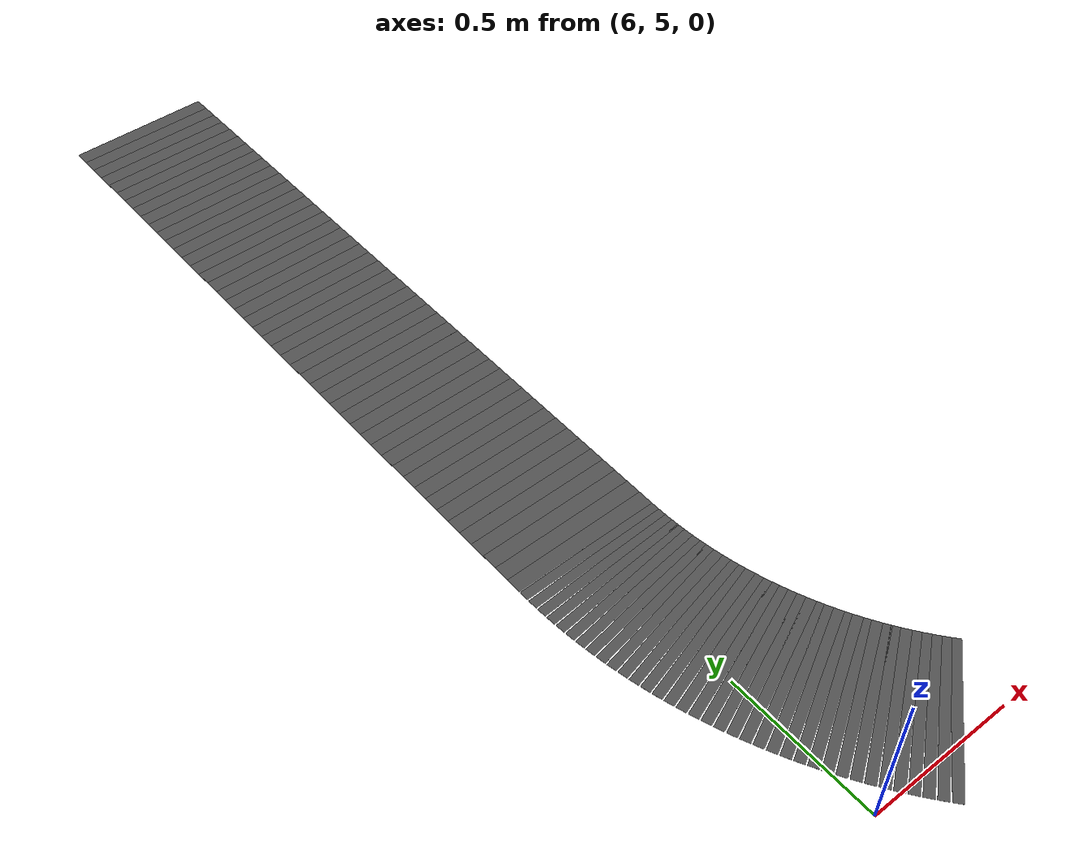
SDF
<sdf version="1.7">
 <model name="default">
  <model name="road_seg_309">
   <static>1</static>
   <link name="road_link">
    <visual name="road_visual">
     <geometry><box><size>0.053392 0.5 0.0001</size></box></geometry>
     <material>
      <script>
       <uri>model://road_material/materials/scripts</uri>
       <uri>model://road_material/materials/textures</uri>
       <name>MyRoad/Road</name>
      </script>
     </material>
    </visual>
    <collision name="road_collision"><geometry><box><size>0.053392 0.5 0.0001</size></box></geometry></collision>
   </link>
   <pose>6 8.50444 0 0 0 -1.5708</pose>
  </model>
  <model name="road_seg_310">
   <static>1</static>
   <link name="road_link">
    <visual name="road_visual">
     <geometry><box><size>0.053392 0.5 0.0001</size></box></geometry>
     <material>
      <script>
       <uri>model://road_material/materials/scripts</uri>
       <uri>model://road_material/materials/textures</uri>
       <name>MyRoad/Road</name>
      </script>
     </material>
    </visual>
    <collision name="road_collision"><geometry><box><size>0.053392 0.5 0.0001</size></box></geometry></collision>
   </link>
   <pose>6 8.45104 0 0 0 -1.5708</pose>
  </model>
  <model name="road_seg_311">
   <static>1</static>
   <link name="road_link">
    <visual name="road_visual">
     <geometry><box><size>0.053392 0.5 0.0001</size></box></geometry>
     <material>
      <script>
       <uri>model://road_material/materials/scripts</uri>
       <uri>model://road_material/materials/textures</uri>
       <name>MyRoad/Road</name>
      </script>
     </material>
    </visual>
    <collision name="road_collision"><geometry><box><size>0.053392 0.5 0.0001</size></box></geometry></collision>
   </link>
   <pose>6 8.39765 0 0 0 -1.5708</pose>
  </model>
  <model name="road_seg_312">
   <static>1</static>
   <link name="road_link">
    <visual name="road_visual">
     <geometry><box><size>0.053392 0.5 0.0001</size></box></geometry>
     <material>
      <script>
       <uri>model://road_material/materials/scripts</uri>
       <uri>model://road_material/materials/textures</uri>
       <name>MyRoad/Road</name>
      </script>
     </material>
    </visual>
    <collision name="road_collision"><geometry><box><size>0.053392 0.5 0.0001</size></box></geometry></collision>
   </link>
   <pose>6 8.34426 0 0 0 -1.5708</pose>
  </model>
  <model name="road_seg_313">
   <static>1</static>
   <link name="road_link">
    <visual name="road_visual">
     <geometry><box><size>0.053392 0.5 0.0001</size></box></geometry>
     <material>
      <script>
       <uri>model://road_material/materials/scripts</uri>
       <uri>model://road_material/materials/textures</uri>
       <name>MyRoad/Road</name>
      </script>
     </material>
    </visual>
    <collision name="road_collision"><geometry><box><size>0.053392 0.5 0.0001</size></box></geometry></collision>
   </link>
   <pose>6 8.29087 0 0 0 -1.5708</pose>
  </model>
  <model name="road_seg_314">
   <static>1</static>
   <link name="road_link">
    <visual name="road_visual">
     <geometry><box><size>0.053392 0.5 0.0001</size></box></geometry>
     <material>
      <script>
       <uri>model://road_material/materials/scripts</uri>
       <uri>model://road_material/materials/textures</uri>
       <name>MyRoad/Road</name>
      </script>
     </material>
    </visual>
    <collision name="road_collision"><geometry><box><size>0.053392 0.5 0.0001</size></box></geometry></collision>
   </link>
   <pose>6 8.23747 0 0 0 -1.5708</pose>
  </model>
  <model name="road_seg_315">
   <static>1</static>
   <link name="road_link">
    <visual name="road_visual">
     <geometry><box><size>0.053392 0.5 0.0001</size></box></geometry>
     <material>
      <script>
       <uri>model://road_material/materials/scripts</uri>
       <uri>model://road_material/materials/textures</uri>
       <name>MyRoad/Road</name>
      </script>
     </material>
    </visual>
    <collision name="road_collision"><geometry><box><size>0.053392 0.5 0.0001</size></box></geometry></collision>
   </link>
   <pose>6 8.18408 0 0 0 -1.5708</pose>
  </model>
  <model name="road_seg_316">
   <static>1</static>
   <link name="road_link">
    <visual name="road_visual">
     <geometry><box><size>0.053392 0.5 0.0001</size></box></geometry>
     <material>
      <script>
       <uri>model://road_material/materials/scripts</uri>
       <uri>model://road_material/materials/textures</uri>
       <name>MyRoad/Road</name>
      </script>
     </material>
    </visual>
    <collision name="road_collision"><geometry><box><size>0.053392 0.5 0.0001</size></box></geometry></collision>
   </link>
   <pose>6 8.13069 0 0 0 -1.5708</pose>
  </model>
  <model name="road_seg_317">
   <static>1</static>
   <link name="road_link">
    <visual name="road_visual">
     <geometry><box><size>0.053392 0.5 0.0001</size></box></geometry>
     <material>
      <script>
       <uri>model://road_material/materials/scripts</uri>
       <uri>model://road_material/materials/textures</uri>
       <name>MyRoad/Road</name>
      </script>
     </material>
    </visual>
    <collision name="road_collision"><geometry><box><size>0.053392 0.5 0.0001</size></box></geometry></collision>
   </link>
   <pose>6 8.0773 0 0 0 -1.5708</pose>
  </model>
  <model name="road_seg_318">
   <static>1</static>
   <link name="road_link">
    <visual name="road_visual">
     <geometry><box><size>0.053392 0.5 0.0001</size></box></geometry>
     <material>
      <script>
       <uri>model://road_material/materials/scripts</uri>
       <uri>model://road_material/materials/textures</uri>
       <name>MyRoad/Road</name>
      </script>
     </material>
    </visual>
    <collision name="road_collision"><geometry><box><size>0.053392 0.5 0.0001</size></box></geometry></collision>
   </link>
   <pose>6 8.0239 0 0 0 -1.5708</pose>
  </model>
  <model name="road_seg_319">
   <static>1</static>
   <link name="road_link">
    <visual name="road_visual">
     <geometry><box><size>0.053392 0.5 0.0001</size></box></geometry>
     <material>
      <script>
       <uri>model://road_material/materials/scripts</uri>
       <uri>model://road_material/materials/textures</uri>
       <name>MyRoad/Road</name>
      </script>
     </material>
    </visual>
    <collision name="road_collision"><geometry><box><size>0.053392 0.5 0.0001</size></box></geometry></collision>
   </link>
   <pose>6 7.97051 0 0 0 -1.5708</pose>
  </model>
  <model name="road_seg_320">
   <static>1</static>
   <link name="road_link">
    <visual name="road_visual">
     <geometry><box><size>0.053392 0.5 0.0001</size></box></geometry>
     <material>
      <script>
       <uri>model://road_material/materials/scripts</uri>
       <uri>model://road_material/materials/textures</uri>
       <name>MyRoad/Road</name>
      </script>
     </material>
    </visual>
    <collision name="road_collision"><geometry><box><size>0.053392 0.5 0.0001</size></box></geometry></collision>
   </link>
   <pose>6 7.91712 0 0 0 -1.5708</pose>
  </model>
  <model name="road_seg_321">
   <static>1</static>
   <link name="road_link">
    <visual name="road_visual">
     <geometry><box><size>0.053392 0.5 0.0001</size></box></geometry>
     <material>
      <script>
       <uri>model://road_material/materials/scripts</uri>
       <uri>model://road_material/materials/textures</uri>
       <name>MyRoad/Road</name>
      </script>
     </material>
    </visual>
    <collision name="road_collision"><geometry><box><size>0.053392 0.5 0.0001</size></box></geometry></collision>
   </link>
   <pose>6 7.86373 0 0 0 -1.5708</pose>
  </model>
  <model name="road_seg_322">
   <static>1</static>
   <link name="road_link">
    <visual name="road_visual">
     <geometry><box><size>0.053392 0.5 0.0001</size></box></geometry>
     <material>
      <script>
       <uri>model://road_material/materials/scripts</uri>
       <uri>model://road_material/materials/textures</uri>
       <name>MyRoad/Road</name>
      </script>
     </material>
    </visual>
    <collision name="road_collision"><geometry><box><size>0.053392 0.5 0.0001</size></box></geometry></collision>
   </link>
   <pose>6 7.81033 0 0 0 -1.5708</pose>
  </model>
  <model name="road_seg_323">
   <static>1</static>
   <link name="road_link">
    <visual name="road_visual">
     <geometry><box><size>0.053392 0.5 0.0001</size></box></geometry>
     <material>
      <script>
       <uri>model://road_material/materials/scripts</uri>
       <uri>model://road_material/materials/textures</uri>
       <name>MyRoad/Road</name>
      </script>
     </material>
    </visual>
    <collision name="road_collision"><geometry><box><size>0.053392 0.5 0.0001</size></box></geometry></collision>
   </link>
   <pose>6 7.75694 0 0 0 -1.5708</pose>
  </model>
  <model name="road_seg_324">
   <static>1</static>
   <link name="road_link">
    <visual name="road_visual">
     <geometry><box><size>0.053392 0.5 0.0001</size></box></geometry>
     <material>
      <script>
       <uri>model://road_material/materials/scripts</uri>
       <uri>model://road_material/materials/textures</uri>
       <name>MyRoad/Road</name>
      </script>
     </material>
    </visual>
    <collision name="road_collision"><geometry><box><size>0.053392 0.5 0.0001</size></box></geometry></collision>
   </link>
   <pose>6 7.70355 0 0 0 -1.5708</pose>
  </model>
  <model name="road_seg_325">
   <static>1</static>
   <link name="road_link">
    <visual name="road_visual">
     <geometry><box><size>0.053392 0.5 0.0001</size></box></geometry>
     <material>
      <script>
       <uri>model://road_material/materials/scripts</uri>
       <uri>model://road_material/materials/textures</uri>
       <name>MyRoad/Road</name>
      </script>
     </material>
    </visual>
    <collision name="road_collision"><geometry><box><size>0.053392 0.5 0.0001</size></box></geometry></collision>
   </link>
   <pose>6 7.65016 0 0 0 -1.5708</pose>
  </model>
  <model name="road_seg_326">
   <static>1</static>
   <link name="road_link">
    <visual name="road_visual">
     <geometry><box><size>0.053392 0.5 0.0001</size></box></geometry>
     <material>
      <script>
       <uri>model://road_material/materials/scripts</uri>
       <uri>model://road_material/materials/textures</uri>
       <name>MyRoad/Road</name>
      </script>
     </material>
    </visual>
    <collision name="road_collision"><geometry><box><size>0.053392 0.5 0.0001</size></box></geometry></collision>
   </link>
   <pose>6 7.59676 0 0 0 -1.5708</pose>
  </model>
  <model name="road_seg_327">
   <static>1</static>
   <link name="road_link">
    <visual name="road_visual">
     <geometry><box><size>0.053392 0.5 0.0001</size></box></geometry>
     <material>
      <script>
       <uri>model://road_material/materials/scripts</uri>
       <uri>model://road_material/materials/textures</uri>
       <name>MyRoad/Road</name>
      </script>
     </material>
    </visual>
    <collision name="road_collision"><geometry><box><size>0.053392 0.5 0.0001</size></box></geometry></collision>
   </link>
   <pose>6 7.54337 0 0 0 -1.5708</pose>
  </model>
  <model name="road_seg_328">
   <static>1</static>
   <link name="road_link">
    <visual name="road_visual">
     <geometry><box><size>0.053392 0.5 0.0001</size></box></geometry>
     <material>
      <script>
       <uri>model://road_material/materials/scripts</uri>
       <uri>model://road_material/materials/textures</uri>
       <name>MyRoad/Road</name>
      </script>
     </material>
    </visual>
    <collision name="road_collision"><geometry><box><size>0.053392 0.5 0.0001</size></box></geometry></collision>
   </link>
   <pose>6 7.48998 0 0 0 -1.5708</pose>
  </model>
  <model name="road_seg_329">
   <static>1</static>
   <link name="road_link">
    <visual name="road_visual">
     <geometry><box><size>0.053392 0.5 0.0001</size></box></geometry>
     <material>
      <script>
       <uri>model://road_material/materials/scripts</uri>
       <uri>model://road_material/materials/textures</uri>
       <name>MyRoad/Road</name>
      </script>
     </material>
    </visual>
    <collision name="road_collision"><geometry><box><size>0.053392 0.5 0.0001</size></box></geometry></collision>
   </link>
   <pose>6 7.43659 0 0 0 -1.5708</pose>
  </model>
  <model name="road_seg_330">
   <static>1</static>
   <link name="road_link">
    <visual name="road_visual">
     <geometry><box><size>0.053392 0.5 0.0001</size></box></geometry>
     <material>
      <script>
       <uri>model://road_material/materials/scripts</uri>
       <uri>model://road_material/materials/textures</uri>
       <name>MyRoad/Road</name>
      </script>
     </material>
    </visual>
    <collision name="road_collision"><geometry><box><size>0.053392 0.5 0.0001</size></box></geometry></collision>
   </link>
   <pose>6 7.38319 0 0 0 -1.5708</pose>
  </model>
  <model name="road_seg_331">
   <static>1</static>
   <link name="road_link">
    <visual name="road_visual">
     <geometry><box><size>0.053392 0.5 0.0001</size></box></geometry>
     <material>
      <script>
       <uri>model://road_material/materials/scripts</uri>
       <uri>model://road_material/materials/textures</uri>
       <name>MyRoad/Road</name>
      </script>
     </material>
    </visual>
    <collision name="road_collision"><geometry><box><size>0.053392 0.5 0.0001</size></box></geometry></collision>
   </link>
   <pose>6 7.3298 0 0 0 -1.5708</pose>
  </model>
  <model name="road_seg_332">
   <static>1</static>
   <link name="road_link">
    <visual name="road_visual">
     <geometry><box><size>0.053392 0.5 0.0001</size></box></geometry>
     <material>
      <script>
       <uri>model://road_material/materials/scripts</uri>
       <uri>model://road_material/materials/textures</uri>
       <name>MyRoad/Road</name>
      </script>
     </material>
    </visual>
    <collision name="road_collision"><geometry><box><size>0.053392 0.5 0.0001</size></box></geometry></collision>
   </link>
   <pose>6 7.27641 0 0 0 -1.5708</pose>
  </model>
  <model name="road_seg_333">
   <static>1</static>
   <link name="road_link">
    <visual name="road_visual">
     <geometry><box><size>0.053392 0.5 0.0001</size></box></geometry>
     <material>
      <script>
       <uri>model://road_material/materials/scripts</uri>
       <uri>model://road_material/materials/textures</uri>
       <name>MyRoad/Road</name>
      </script>
     </material>
    </visual>
    <collision name="road_collision"><geometry><box><size>0.053392 0.5 0.0001</size></box></geometry></collision>
   </link>
   <pose>6 7.22302 0 0 0 -1.5708</pose>
  </model>
  <model name="road_seg_334">
   <static>1</static>
   <link name="road_link">
    <visual name="road_visual">
     <geometry><box><size>0.053392 0.5 0.0001</size></box></geometry>
     <material>
      <script>
       <uri>model://road_material/materials/scripts</uri>
       <uri>model://road_material/materials/textures</uri>
       <name>MyRoad/Road</name>
      </script>
     </material>
    </visual>
    <collision name="road_collision"><geometry><box><size>0.053392 0.5 0.0001</size></box></geometry></collision>
   </link>
   <pose>6 7.16962 0 0 0 -1.5708</pose>
  </model>
  <model name="road_seg_335">
   <static>1</static>
   <link name="road_link">
    <visual name="road_visual">
     <geometry><box><size>0.053392 0.5 0.0001</size></box></geometry>
     <material>
      <script>
       <uri>model://road_material/materials/scripts</uri>
       <uri>model://road_material/materials/textures</uri>
       <name>MyRoad/Road</name>
      </script>
     </material>
    </visual>
    <collision name="road_collision"><geometry><box><size>0.053392 0.5 0.0001</size></box></geometry></collision>
   </link>
   <pose>6 7.11623 0 0 0 -1.5708</pose>
  </model>
  <model name="road_seg_336">
   <static>1</static>
   <link name="road_link">
    <visual name="road_visual">
     <geometry><box><size>0.053392 0.5 0.0001</size></box></geometry>
     <material>
      <script>
       <uri>model://road_material/materials/scripts</uri>
       <uri>model://road_material/materials/textures</uri>
       <name>MyRoad/Road</name>
      </script>
     </material>
    </visual>
    <collision name="road_collision"><geometry><box><size>0.053392 0.5 0.0001</size></box></geometry></collision>
   </link>
   <pose>6 7.06284 0 0 0 -1.5708</pose>
  </model>
  <model name="road_seg_337">
   <static>1</static>
   <link name="road_link">
    <visual name="road_visual">
     <geometry><box><size>0.053392 0.5 0.0001</size></box></geometry>
     <material>
      <script>
       <uri>model://road_material/materials/scripts</uri>
       <uri>model://road_material/materials/textures</uri>
       <name>MyRoad/Road</name>
      </script>
     </material>
    </visual>
    <collision name="road_collision"><geometry><box><size>0.053392 0.5 0.0001</size></box></geometry></collision>
   </link>
   <pose>6 7.00945 0 0 0 -1.5708</pose>
  </model>
  <model name="road_seg_338">
   <static>1</static>
   <link name="road_link">
    <visual name="road_visual">
     <geometry><box><size>0.053392 0.5 0.0001</size></box></geometry>
     <material>
      <script>
       <uri>model://road_material/materials/scripts</uri>
       <uri>model://road_material/materials/textures</uri>
       <name>MyRoad/Road</name>
      </script>
     </material>
    </visual>
    <collision name="road_collision"><geometry><box><size>0.053392 0.5 0.0001</size></box></geometry></collision>
   </link>
   <pose>6 6.95605 0 0 0 -1.5708</pose>
  </model>
  <model name="road_seg_339">
   <static>1</static>
   <link name="road_link">
    <visual name="road_visual">
     <geometry><box><size>0.053392 0.5 0.0001</size></box></geometry>
     <material>
      <script>
       <uri>model://road_material/materials/scripts</uri>
       <uri>model://road_material/materials/textures</uri>
       <name>MyRoad/Road</name>
      </script>
     </material>
    </visual>
    <collision name="road_collision"><geometry><box><size>0.053392 0.5 0.0001</size></box></geometry></collision>
   </link>
   <pose>6 6.90266 0 0 0 -1.5708</pose>
  </model>
  <model name="road_seg_340">
   <static>1</static>
   <link name="road_link">
    <visual name="road_visual">
     <geometry><box><size>0.053392 0.5 0.0001</size></box></geometry>
     <material>
      <script>
       <uri>model://road_material/materials/scripts</uri>
       <uri>model://road_material/materials/textures</uri>
       <name>MyRoad/Road</name>
      </script>
     </material>
    </visual>
    <collision name="road_collision"><geometry><box><size>0.053392 0.5 0.0001</size></box></geometry></collision>
   </link>
   <pose>6 6.84927 0 0 0 -1.5708</pose>
  </model>
  <model name="road_seg_341">
   <static>1</static>
   <link name="road_link">
    <visual name="road_visual">
     <geometry><box><size>0.053392 0.5 0.0001</size></box></geometry>
     <material>
      <script>
       <uri>model://road_material/materials/scripts</uri>
       <uri>model://road_material/materials/textures</uri>
       <name>MyRoad/Road</name>
      </script>
     </material>
    </visual>
    <collision name="road_collision"><geometry><box><size>0.053392 0.5 0.0001</size></box></geometry></collision>
   </link>
   <pose>6 6.79588 0 0 0 -1.5708</pose>
  </model>
  <model name="road_seg_342">
   <static>1</static>
   <link name="road_link">
    <visual name="road_visual">
     <geometry><box><size>0.053392 0.5 0.0001</size></box></geometry>
     <material>
      <script>
       <uri>model://road_material/materials/scripts</uri>
       <uri>model://road_material/materials/textures</uri>
       <name>MyRoad/Road</name>
      </script>
     </material>
    </visual>
    <collision name="road_collision"><geometry><box><size>0.053392 0.5 0.0001</size></box></geometry></collision>
   </link>
   <pose>6 6.74248 0 0 0 -1.5708</pose>
  </model>
  <model name="road_seg_343">
   <static>1</static>
   <link name="road_link">
    <visual name="road_visual">
     <geometry><box><size>0.053392 0.5 0.0001</size></box></geometry>
     <material>
      <script>
       <uri>model://road_material/materials/scripts</uri>
       <uri>model://road_material/materials/textures</uri>
       <name>MyRoad/Road</name>
      </script>
     </material>
    </visual>
    <collision name="road_collision"><geometry><box><size>0.053392 0.5 0.0001</size></box></geometry></collision>
   </link>
   <pose>6 6.68909 0 0 0 -1.5708</pose>
  </model>
  <model name="road_seg_344">
   <static>1</static>
   <link name="road_link">
    <visual name="road_visual">
     <geometry><box><size>0.053392 0.5 0.0001</size></box></geometry>
     <material>
      <script>
       <uri>model://road_material/materials/scripts</uri>
       <uri>model://road_material/materials/textures</uri>
       <name>MyRoad/Road</name>
      </script>
     </material>
    </visual>
    <collision name="road_collision"><geometry><box><size>0.053392 0.5 0.0001</size></box></geometry></collision>
   </link>
   <pose>6 6.6357 0 0 0 -1.5708</pose>
  </model>
  <model name="road_seg_345">
   <static>1</static>
   <link name="road_link">
    <visual name="road_visual">
     <geometry><box><size>0.053392 0.5 0.0001</size></box></geometry>
     <material>
      <script>
       <uri>model://road_material/materials/scripts</uri>
       <uri>model://road_material/materials/textures</uri>
       <name>MyRoad/Road</name>
      </script>
     </material>
    </visual>
    <collision name="road_collision"><geometry><box><size>0.053392 0.5 0.0001</size></box></geometry></collision>
   </link>
   <pose>6 6.58231 0 0 0 -1.5708</pose>
  </model>
  <model name="road_seg_346">
   <static>1</static>
   <link name="road_link">
    <visual name="road_visual">
     <geometry><box><size>0.053392 0.5 0.0001</size></box></geometry>
     <material>
      <script>
       <uri>model://road_material/materials/scripts</uri>
       <uri>model://road_material/materials/textures</uri>
       <name>MyRoad/Road</name>
      </script>
     </material>
    </visual>
    <collision name="road_collision"><geometry><box><size>0.053392 0.5 0.0001</size></box></geometry></collision>
   </link>
   <pose>6 6.52891 0 0 0 -1.5708</pose>
  </model>
  <model name="road_seg_347">
   <static>1</static>
   <link name="road_link">
    <visual name="road_visual">
     <geometry><box><size>0.053392 0.5 0.0001</size></box></geometry>
     <material>
      <script>
       <uri>model://road_material/materials/scripts</uri>
       <uri>model://road_material/materials/textures</uri>
       <name>MyRoad/Road</name>
      </script>
     </material>
    </visual>
    <collision name="road_collision"><geometry><box><size>0.053392 0.5 0.0001</size></box></geometry></collision>
   </link>
   <pose>6 6.47552 0 0 0 -1.5708</pose>
  </model>
  <model name="road_seg_348">
   <static>1</static>
   <link name="road_link">
    <visual name="road_visual">
     <geometry><box><size>0.053392 0.5 0.0001</size></box></geometry>
     <material>
      <script>
       <uri>model://road_material/materials/scripts</uri>
       <uri>model://road_material/materials/textures</uri>
       <name>MyRoad/Road</name>
      </script>
     </material>
    </visual>
    <collision name="road_collision"><geometry><box><size>0.053392 0.5 0.0001</size></box></geometry></collision>
   </link>
   <pose>6 6.42213 0 0 0 -1.5708</pose>
  </model>
  <model name="road_seg_349">
   <static>1</static>
   <link name="road_link">
    <visual name="road_visual">
     <geometry><box><size>0.053392 0.5 0.0001</size></box></geometry>
     <material>
      <script>
       <uri>model://road_material/materials/scripts</uri>
       <uri>model://road_material/materials/textures</uri>
       <name>MyRoad/Road</name>
      </script>
     </material>
    </visual>
    <collision name="road_collision"><geometry><box><size>0.053392 0.5 0.0001</size></box></geometry></collision>
   </link>
   <pose>6 6.36874 0 0 0 -1.5708</pose>
  </model>
  <model name="road_seg_350">
   <static>1</static>
   <link name="road_link">
    <visual name="road_visual">
     <geometry><box><size>0.053392 0.5 0.0001</size></box></geometry>
     <material>
      <script>
       <uri>model://road_material/materials/scripts</uri>
       <uri>model://road_material/materials/textures</uri>
       <name>MyRoad/Road</name>
      </script>
     </material>
    </visual>
    <collision name="road_collision"><geometry><box><size>0.053392 0.5 0.0001</size></box></geometry></collision>
   </link>
   <pose>6 6.31534 0 0 0 -1.5708</pose>
  </model>
  <model name="road_seg_351">
   <static>1</static>
   <link name="road_link">
    <visual name="road_visual">
     <geometry><box><size>0.053392 0.5 0.0001</size></box></geometry>
     <material>
      <script>
       <uri>model://road_material/materials/scripts</uri>
       <uri>model://road_material/materials/textures</uri>
       <name>MyRoad/Road</name>
      </script>
     </material>
    </visual>
    <collision name="road_collision"><geometry><box><size>0.053392 0.5 0.0001</size></box></geometry></collision>
   </link>
   <pose>6 6.26195 0 0 0 -1.5708</pose>
  </model>
  <model name="road_seg_352">
   <static>1</static>
   <link name="road_link">
    <visual name="road_visual">
     <geometry><box><size>0.053392 0.5 0.0001</size></box></geometry>
     <material>
      <script>
       <uri>model://road_material/materials/scripts</uri>
       <uri>model://road_material/materials/textures</uri>
       <name>MyRoad/Road</name>
      </script>
     </material>
    </visual>
    <collision name="road_collision"><geometry><box><size>0.053392 0.5 0.0001</size></box></geometry></collision>
   </link>
   <pose>6 6.20856 0 0 0 -1.5708</pose>
  </model>
  <model name="road_seg_353">
   <static>1</static>
   <link name="road_link">
    <visual name="road_visual">
     <geometry><box><size>0.053392 0.5 0.0001</size></box></geometry>
     <material>
      <script>
       <uri>model://road_material/materials/scripts</uri>
       <uri>model://road_material/materials/textures</uri>
       <name>MyRoad/Road</name>
      </script>
     </material>
    </visual>
    <collision name="road_collision"><geometry><box><size>0.053392 0.5 0.0001</size></box></geometry></collision>
   </link>
   <pose>6 6.15517 0 0 0 -1.5708</pose>
  </model>
  <model name="road_seg_354">
   <static>1</static>
   <link name="road_link">
    <visual name="road_visual">
     <geometry><box><size>0.053392 0.5 0.0001</size></box></geometry>
     <material>
      <script>
       <uri>model://road_material/materials/scripts</uri>
       <uri>model://road_material/materials/textures</uri>
       <name>MyRoad/Road</name>
      </script>
     </material>
    </visual>
    <collision name="road_collision"><geometry><box><size>0.053392 0.5 0.0001</size></box></geometry></collision>
   </link>
   <pose>6 6.10177 0 0 0 -1.5708</pose>
  </model>
  <model name="road_seg_355">
   <static>1</static>
   <link name="road_link">
    <visual name="road_visual">
     <geometry><box><size>0.031318 0.5 0.0001</size></box></geometry>
     <material>
      <script>
       <uri>model://road_material/materials/scripts</uri>
       <uri>model://road_material/materials/textures</uri>
       <name>MyRoad/Road</name>
      </script>
     </material>
    </visual>
    <collision name="road_collision"><geometry><box><size>0.031318 0.5 0.0001</size></box></geometry></collision>
   </link>
   <pose>6.00016 6.05942 0 0 0 -1.56085</pose>
  </model>
  <model name="road_seg_356">
   <static>1</static>
   <link name="road_link">
    <visual name="road_visual">
     <geometry><box><size>0.031318 0.5 0.0001</size></box></geometry>
     <material>
      <script>
       <uri>model://road_material/materials/scripts</uri>
       <uri>model://road_material/materials/textures</uri>
       <name>MyRoad/Road</name>
      </script>
     </material>
    </visual>
    <collision name="road_collision"><geometry><box><size>0.031318 0.5 0.0001</size></box></geometry></collision>
   </link>
   <pose>6.00078 6.02811 0 0 0 -1.54097</pose>
  </model>
  <model name="road_seg_357">
   <static>1</static>
   <link name="road_link">
    <visual name="road_visual">
     <geometry><box><size>0.031318 0.5 0.0001</size></box></geometry>
     <material>
      <script>
       <uri>model://road_material/materials/scripts</uri>
       <uri>model://road_material/materials/textures</uri>
       <name>MyRoad/Road</name>
      </script>
     </material>
    </visual>
    <collision name="road_collision"><geometry><box><size>0.031318 0.5 0.0001</size></box></geometry></collision>
   </link>
   <pose>6.00202 5.99682 0 0 0 -1.52109</pose>
  </model>
  <model name="road_seg_358">
   <static>1</static>
   <link name="road_link">
    <visual name="road_visual">
     <geometry><box><size>0.031318 0.5 0.0001</size></box></geometry>
     <material>
      <script>
       <uri>model://road_material/materials/scripts</uri>
       <uri>model://road_material/materials/textures</uri>
       <name>MyRoad/Road</name>
      </script>
     </material>
    </visual>
    <collision name="road_collision"><geometry><box><size>0.031318 0.5 0.0001</size></box></geometry></collision>
   </link>
   <pose>6.00389 5.96556 0 0 0 -1.5012</pose>
  </model>
  <model name="road_seg_359">
   <static>1</static>
   <link name="road_link">
    <visual name="road_visual">
     <geometry><box><size>0.031318 0.5 0.0001</size></box></geometry>
     <material>
      <script>
       <uri>model://road_material/materials/scripts</uri>
       <uri>model://road_material/materials/textures</uri>
       <name>MyRoad/Road</name>
      </script>
     </material>
    </visual>
    <collision name="road_collision"><geometry><box><size>0.031318 0.5 0.0001</size></box></geometry></collision>
   </link>
   <pose>6.00638 5.93434 0 0 0 -1.48132</pose>
  </model>
  <model name="road_seg_360">
   <static>1</static>
   <link name="road_link">
    <visual name="road_visual">
     <geometry><box><size>0.031318 0.5 0.0001</size></box></geometry>
     <material>
      <script>
       <uri>model://road_material/materials/scripts</uri>
       <uri>model://road_material/materials/textures</uri>
       <name>MyRoad/Road</name>
      </script>
     </material>
    </visual>
    <collision name="road_collision"><geometry><box><size>0.031318 0.5 0.0001</size></box></geometry></collision>
   </link>
   <pose>6.00949 5.90318 0 0 0 -1.46144</pose>
  </model>
  <model name="road_seg_361">
   <static>1</static>
   <link name="road_link">
    <visual name="road_visual">
     <geometry><box><size>0.031318 0.5 0.0001</size></box></geometry>
     <material>
      <script>
       <uri>model://road_material/materials/scripts</uri>
       <uri>model://road_material/materials/textures</uri>
       <name>MyRoad/Road</name>
      </script>
     </material>
    </visual>
    <collision name="road_collision"><geometry><box><size>0.031318 0.5 0.0001</size></box></geometry></collision>
   </link>
   <pose>6.01321 5.87209 0 0 0 -1.44155</pose>
  </model>
  <model name="road_seg_362">
   <static>1</static>
   <link name="road_link">
    <visual name="road_visual">
     <geometry><box><size>0.031318 0.5 0.0001</size></box></geometry>
     <material>
      <script>
       <uri>model://road_material/materials/scripts</uri>
       <uri>model://road_material/materials/textures</uri>
       <name>MyRoad/Road</name>
      </script>
     </material>
    </visual>
    <collision name="road_collision"><geometry><box><size>0.031318 0.5 0.0001</size></box></geometry></collision>
   </link>
   <pose>6.01756 5.84107 0 0 0 -1.42167</pose>
  </model>
  <model name="road_seg_363">
   <static>1</static>
   <link name="road_link">
    <visual name="road_visual">
     <geometry><box><size>0.031318 0.5 0.0001</size></box></geometry>
     <material>
      <script>
       <uri>model://road_material/materials/scripts</uri>
       <uri>model://road_material/materials/textures</uri>
       <name>MyRoad/Road</name>
      </script>
     </material>
    </visual>
    <collision name="road_collision"><geometry><box><size>0.031318 0.5 0.0001</size></box></geometry></collision>
   </link>
   <pose>6.02252 5.81015 0 0 0 -1.40179</pose>
  </model>
  <model name="road_seg_364">
   <static>1</static>
   <link name="road_link">
    <visual name="road_visual">
     <geometry><box><size>0.031318 0.5 0.0001</size></box></geometry>
     <material>
      <script>
       <uri>model://road_material/materials/scripts</uri>
       <uri>model://road_material/materials/textures</uri>
       <name>MyRoad/Road</name>
      </script>
     </material>
    </visual>
    <collision name="road_collision"><geometry><box><size>0.031318 0.5 0.0001</size></box></geometry></collision>
   </link>
   <pose>6.02809 5.77934 0 0 0 -1.3819</pose>
  </model>
  <model name="road_seg_365">
   <static>1</static>
   <link name="road_link">
    <visual name="road_visual">
     <geometry><box><size>0.031318 0.5 0.0001</size></box></geometry>
     <material>
      <script>
       <uri>model://road_material/materials/scripts</uri>
       <uri>model://road_material/materials/textures</uri>
       <name>MyRoad/Road</name>
      </script>
     </material>
    </visual>
    <collision name="road_collision"><geometry><box><size>0.031318 0.5 0.0001</size></box></geometry></collision>
   </link>
   <pose>6.03428 5.74864 0 0 0 -1.36202</pose>
  </model>
  <model name="road_seg_366">
   <static>1</static>
   <link name="road_link">
    <visual name="road_visual">
     <geometry><box><size>0.031318 0.5 0.0001</size></box></geometry>
     <material>
      <script>
       <uri>model://road_material/materials/scripts</uri>
       <uri>model://road_material/materials/textures</uri>
       <name>MyRoad/Road</name>
      </script>
     </material>
    </visual>
    <collision name="road_collision"><geometry><box><size>0.031318 0.5 0.0001</size></box></geometry></collision>
   </link>
   <pose>6.04107 5.71807 0 0 0 -1.34214</pose>
  </model>
  <model name="road_seg_367">
   <static>1</static>
   <link name="road_link">
    <visual name="road_visual">
     <geometry><box><size>0.031318 0.5 0.0001</size></box></geometry>
     <material>
      <script>
       <uri>model://road_material/materials/scripts</uri>
       <uri>model://road_material/materials/textures</uri>
       <name>MyRoad/Road</name>
      </script>
     </material>
    </visual>
    <collision name="road_collision"><geometry><box><size>0.031318 0.5 0.0001</size></box></geometry></collision>
   </link>
   <pose>6.04847 5.68764 0 0 0 -1.32225</pose>
  </model>
  <model name="road_seg_368">
   <static>1</static>
   <link name="road_link">
    <visual name="road_visual">
     <geometry><box><size>0.031318 0.5 0.0001</size></box></geometry>
     <material>
      <script>
       <uri>model://road_material/materials/scripts</uri>
       <uri>model://road_material/materials/textures</uri>
       <name>MyRoad/Road</name>
      </script>
     </material>
    </visual>
    <collision name="road_collision"><geometry><box><size>0.031318 0.5 0.0001</size></box></geometry></collision>
   </link>
   <pose>6.05648 5.65736 0 0 0 -1.30237</pose>
  </model>
  <model name="road_seg_369">
   <static>1</static>
   <link name="road_link">
    <visual name="road_visual">
     <geometry><box><size>0.031318 0.5 0.0001</size></box></geometry>
     <material>
      <script>
       <uri>model://road_material/materials/scripts</uri>
       <uri>model://road_material/materials/textures</uri>
       <name>MyRoad/Road</name>
      </script>
     </material>
    </visual>
    <collision name="road_collision"><geometry><box><size>0.031318 0.5 0.0001</size></box></geometry></collision>
   </link>
   <pose>6.06509 5.62725 0 0 0 -1.28249</pose>
  </model>
  <model name="road_seg_370">
   <static>1</static>
   <link name="road_link">
    <visual name="road_visual">
     <geometry><box><size>0.031318 0.5 0.0001</size></box></geometry>
     <material>
      <script>
       <uri>model://road_material/materials/scripts</uri>
       <uri>model://road_material/materials/textures</uri>
       <name>MyRoad/Road</name>
      </script>
     </material>
    </visual>
    <collision name="road_collision"><geometry><box><size>0.031318 0.5 0.0001</size></box></geometry></collision>
   </link>
   <pose>6.07429 5.59732 0 0 0 -1.2626</pose>
  </model>
  <model name="road_seg_371">
   <static>1</static>
   <link name="road_link">
    <visual name="road_visual">
     <geometry><box><size>0.031318 0.5 0.0001</size></box></geometry>
     <material>
      <script>
       <uri>model://road_material/materials/scripts</uri>
       <uri>model://road_material/materials/textures</uri>
       <name>MyRoad/Road</name>
      </script>
     </material>
    </visual>
    <collision name="road_collision"><geometry><box><size>0.031318 0.5 0.0001</size></box></geometry></collision>
   </link>
   <pose>6.08408 5.56758 0 0 0 -1.24272</pose>
  </model>
  <model name="road_seg_372">
   <static>1</static>
   <link name="road_link">
    <visual name="road_visual">
     <geometry><box><size>0.031318 0.5 0.0001</size></box></geometry>
     <material>
      <script>
       <uri>model://road_material/materials/scripts</uri>
       <uri>model://road_material/materials/textures</uri>
       <name>MyRoad/Road</name>
      </script>
     </material>
    </visual>
    <collision name="road_collision"><geometry><box><size>0.031318 0.5 0.0001</size></box></geometry></collision>
   </link>
   <pose>6.09447 5.53803 0 0 0 -1.22284</pose>
  </model>
  <model name="road_seg_373">
   <static>1</static>
   <link name="road_link">
    <visual name="road_visual">
     <geometry><box><size>0.031318 0.5 0.0001</size></box></geometry>
     <material>
      <script>
       <uri>model://road_material/materials/scripts</uri>
       <uri>model://road_material/materials/textures</uri>
       <name>MyRoad/Road</name>
      </script>
     </material>
    </visual>
    <collision name="road_collision"><geometry><box><size>0.031318 0.5 0.0001</size></box></geometry></collision>
   </link>
   <pose>6.10544 5.5087 0 0 0 -1.20295</pose>
  </model>
  <model name="road_seg_374">
   <static>1</static>
   <link name="road_link">
    <visual name="road_visual">
     <geometry><box><size>0.031318 0.5 0.0001</size></box></geometry>
     <material>
      <script>
       <uri>model://road_material/materials/scripts</uri>
       <uri>model://road_material/materials/textures</uri>
       <name>MyRoad/Road</name>
      </script>
     </material>
    </visual>
    <collision name="road_collision"><geometry><box><size>0.031318 0.5 0.0001</size></box></geometry></collision>
   </link>
   <pose>6.11699 5.47959 0 0 0 -1.18307</pose>
  </model>
  <model name="road_seg_375">
   <static>1</static>
   <link name="road_link">
    <visual name="road_visual">
     <geometry><box><size>0.031318 0.5 0.0001</size></box></geometry>
     <material>
      <script>
       <uri>model://road_material/materials/scripts</uri>
       <uri>model://road_material/materials/textures</uri>
       <name>MyRoad/Road</name>
      </script>
     </material>
    </visual>
    <collision name="road_collision"><geometry><box><size>0.031318 0.5 0.0001</size></box></geometry></collision>
   </link>
   <pose>6.12912 5.45072 0 0 0 -1.16318</pose>
  </model>
  <model name="road_seg_376">
   <static>1</static>
   <link name="road_link">
    <visual name="road_visual">
     <geometry><box><size>0.031318 0.5 0.0001</size></box></geometry>
     <material>
      <script>
       <uri>model://road_material/materials/scripts</uri>
       <uri>model://road_material/materials/textures</uri>
       <name>MyRoad/Road</name>
      </script>
     </material>
    </visual>
    <collision name="road_collision"><geometry><box><size>0.031318 0.5 0.0001</size></box></geometry></collision>
   </link>
   <pose>6.14182 5.42209 0 0 0 -1.1433</pose>
  </model>
  <model name="road_seg_377">
   <static>1</static>
   <link name="road_link">
    <visual name="road_visual">
     <geometry><box><size>0.031318 0.5 0.0001</size></box></geometry>
     <material>
      <script>
       <uri>model://road_material/materials/scripts</uri>
       <uri>model://road_material/materials/textures</uri>
       <name>MyRoad/Road</name>
      </script>
     </material>
    </visual>
    <collision name="road_collision"><geometry><box><size>0.031318 0.5 0.0001</size></box></geometry></collision>
   </link>
   <pose>6.15508 5.39373 0 0 0 -1.12342</pose>
  </model>
  <model name="road_seg_378">
   <static>1</static>
   <link name="road_link">
    <visual name="road_visual">
     <geometry><box><size>0.031318 0.5 0.0001</size></box></geometry>
     <material>
      <script>
       <uri>model://road_material/materials/scripts</uri>
       <uri>model://road_material/materials/textures</uri>
       <name>MyRoad/Road</name>
      </script>
     </material>
    </visual>
    <collision name="road_collision"><geometry><box><size>0.031318 0.5 0.0001</size></box></geometry></collision>
   </link>
   <pose>6.16891 5.36563 0 0 0 -1.10353</pose>
  </model>
  <model name="road_seg_379">
   <static>1</static>
   <link name="road_link">
    <visual name="road_visual">
     <geometry><box><size>0.031318 0.5 0.0001</size></box></geometry>
     <material>
      <script>
       <uri>model://road_material/materials/scripts</uri>
       <uri>model://road_material/materials/textures</uri>
       <name>MyRoad/Road</name>
      </script>
     </material>
    </visual>
    <collision name="road_collision"><geometry><box><size>0.031318 0.5 0.0001</size></box></geometry></collision>
   </link>
   <pose>6.18329 5.33781 0 0 0 -1.08365</pose>
  </model>
  <model name="road_seg_380">
   <static>1</static>
   <link name="road_link">
    <visual name="road_visual">
     <geometry><box><size>0.031318 0.5 0.0001</size></box></geometry>
     <material>
      <script>
       <uri>model://road_material/materials/scripts</uri>
       <uri>model://road_material/materials/textures</uri>
       <name>MyRoad/Road</name>
      </script>
     </material>
    </visual>
    <collision name="road_collision"><geometry><box><size>0.031318 0.5 0.0001</size></box></geometry></collision>
   </link>
   <pose>6.19823 5.31029 0 0 0 -1.06377</pose>
  </model>
  <model name="road_seg_381">
   <static>1</static>
   <link name="road_link">
    <visual name="road_visual">
     <geometry><box><size>0.031318 0.5 0.0001</size></box></geometry>
     <material>
      <script>
       <uri>model://road_material/materials/scripts</uri>
       <uri>model://road_material/materials/textures</uri>
       <name>MyRoad/Road</name>
      </script>
     </material>
    </visual>
    <collision name="road_collision"><geometry><box><size>0.031318 0.5 0.0001</size></box></geometry></collision>
   </link>
   <pose>6.21371 5.28306 0 0 0 -1.04388</pose>
  </model>
  <model name="road_seg_382">
   <static>1</static>
   <link name="road_link">
    <visual name="road_visual">
     <geometry><box><size>0.031318 0.5 0.0001</size></box></geometry>
     <material>
      <script>
       <uri>model://road_material/materials/scripts</uri>
       <uri>model://road_material/materials/textures</uri>
       <name>MyRoad/Road</name>
      </script>
     </material>
    </visual>
    <collision name="road_collision"><geometry><box><size>0.031318 0.5 0.0001</size></box></geometry></collision>
   </link>
   <pose>6.22972 5.25615 0 0 0 -1.024</pose>
  </model>
  <model name="road_seg_383">
   <static>1</static>
   <link name="road_link">
    <visual name="road_visual">
     <geometry><box><size>0.031318 0.5 0.0001</size></box></geometry>
     <material>
      <script>
       <uri>model://road_material/materials/scripts</uri>
       <uri>model://road_material/materials/textures</uri>
       <name>MyRoad/Road</name>
      </script>
     </material>
    </visual>
    <collision name="road_collision"><geometry><box><size>0.031318 0.5 0.0001</size></box></geometry></collision>
   </link>
   <pose>6.24627 5.22956 0 0 0 -1.00412</pose>
  </model>
  <model name="road_seg_384">
   <static>1</static>
   <link name="road_link">
    <visual name="road_visual">
     <geometry><box><size>0.031318 0.5 0.0001</size></box></geometry>
     <material>
      <script>
       <uri>model://road_material/materials/scripts</uri>
       <uri>model://road_material/materials/textures</uri>
       <name>MyRoad/Road</name>
      </script>
     </material>
    </visual>
    <collision name="road_collision"><geometry><box><size>0.031318 0.5 0.0001</size></box></geometry></collision>
   </link>
   <pose>6.26334 5.20331 0 0 0 -0.984233</pose>
  </model>
  <model name="road_seg_385">
   <static>1</static>
   <link name="road_link">
    <visual name="road_visual">
     <geometry><box><size>0.031318 0.5 0.0001</size></box></geometry>
     <material>
      <script>
       <uri>model://road_material/materials/scripts</uri>
       <uri>model://road_material/materials/textures</uri>
       <name>MyRoad/Road</name>
      </script>
     </material>
    </visual>
    <collision name="road_collision"><geometry><box><size>0.031318 0.5 0.0001</size></box></geometry></collision>
   </link>
   <pose>6.28093 5.1774 0 0 0 -0.96435</pose>
  </model>
  <model name="road_seg_386">
   <static>1</static>
   <link name="road_link">
    <visual name="road_visual">
     <geometry><box><size>0.031318 0.5 0.0001</size></box></geometry>
     <material>
      <script>
       <uri>model://road_material/materials/scripts</uri>
       <uri>model://road_material/materials/textures</uri>
       <name>MyRoad/Road</name>
      </script>
     </material>
    </visual>
    <collision name="road_collision"><geometry><box><size>0.031318 0.5 0.0001</size></box></geometry></collision>
   </link>
   <pose>6.29904 5.15185 0 0 0 -0.944466</pose>
  </model>
  <model name="road_seg_387">
   <static>1</static>
   <link name="road_link">
    <visual name="road_visual">
     <geometry><box><size>0.031318 0.5 0.0001</size></box></geometry>
     <material>
      <script>
       <uri>model://road_material/materials/scripts</uri>
       <uri>model://road_material/materials/textures</uri>
       <name>MyRoad/Road</name>
      </script>
     </material>
    </visual>
    <collision name="road_collision"><geometry><box><size>0.031318 0.5 0.0001</size></box></geometry></collision>
   </link>
   <pose>6.31765 5.12666 0 0 0 -0.924583</pose>
  </model>
  <model name="road_seg_388">
   <static>1</static>
   <link name="road_link">
    <visual name="road_visual">
     <geometry><box><size>0.031318 0.5 0.0001</size></box></geometry>
     <material>
      <script>
       <uri>model://road_material/materials/scripts</uri>
       <uri>model://road_material/materials/textures</uri>
       <name>MyRoad/Road</name>
      </script>
     </material>
    </visual>
    <collision name="road_collision"><geometry><box><size>0.031318 0.5 0.0001</size></box></geometry></collision>
   </link>
   <pose>6.33675 5.10185 0 0 0 -0.904699</pose>
  </model>
  <model name="road_seg_389">
   <static>1</static>
   <link name="road_link">
    <visual name="road_visual">
     <geometry><box><size>0.031318 0.5 0.0001</size></box></geometry>
     <material>
      <script>
       <uri>model://road_material/materials/scripts</uri>
       <uri>model://road_material/materials/textures</uri>
       <name>MyRoad/Road</name>
      </script>
     </material>
    </visual>
    <collision name="road_collision"><geometry><box><size>0.031318 0.5 0.0001</size></box></geometry></collision>
   </link>
   <pose>6.35635 5.07742 0 0 0 -0.884816</pose>
  </model>
  <model name="road_seg_390">
   <static>1</static>
   <link name="road_link">
    <visual name="road_visual">
     <geometry><box><size>0.031318 0.5 0.0001</size></box></geometry>
     <material>
      <script>
       <uri>model://road_material/materials/scripts</uri>
       <uri>model://road_material/materials/textures</uri>
       <name>MyRoad/Road</name>
      </script>
     </material>
    </visual>
    <collision name="road_collision"><geometry><box><size>0.031318 0.5 0.0001</size></box></geometry></collision>
   </link>
   <pose>6.37642 5.05339 0 0 0 -0.864932</pose>
  </model>
 </model>
</sdf>
